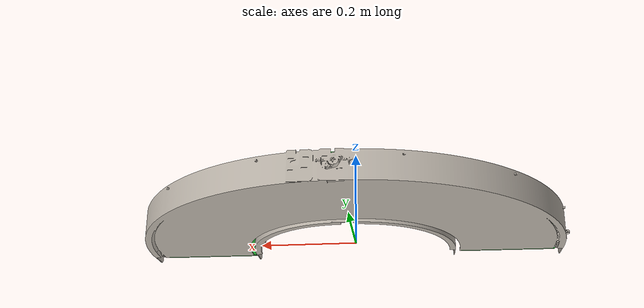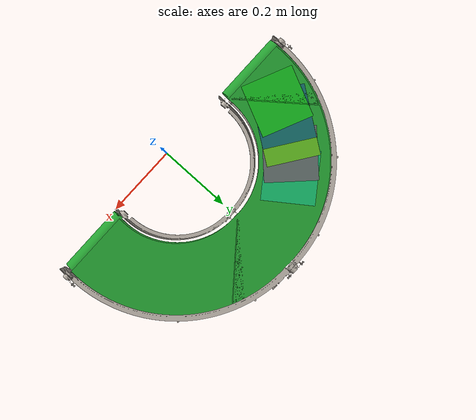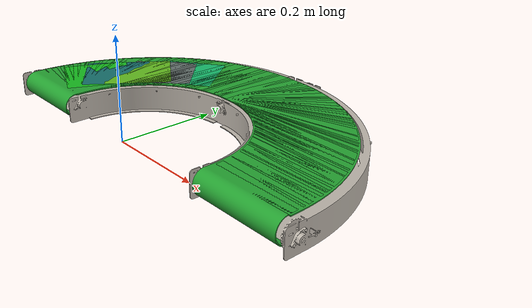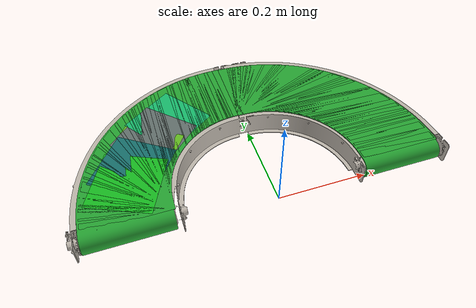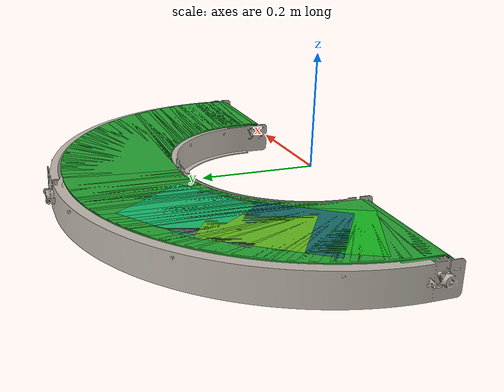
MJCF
<mujoco model="conveyor_curved">
    <size njmax="500" nconmax="100" />
    <asset>
      <texture name="tex_metal_rough" type="2d" file="../conveyor_belt/pvc_green.png" />
      <texture name="tex_metal_seamed" type="2d" file="Metal_Seamed.png" />

      <material name="mat_belt_metal_rough" texture="tex_metal_rough" reflectance="0.5" rgba="1 1 1 1"/>
      <material name="mat_fixtures_metal_seamed" texture="tex_metal_seamed" reflectance="0.7" rgba="1 1 1 1"/>
      <mesh name="mesh_belt_curved1" file="belt_curved1.obj" scale="0.3 0.3 0.3" />
      <mesh name="mesh_belt_curved2" file="belt_curved2.obj" scale="0.3 0.3 0.3" />
      <mesh name="mesh_fixtures_curved" file="fixtures_curved.obj" scale="0.3 0.3 0.3"/>

    </asset>

  <worldbody>
    <body>
      <body name="object">
        <!-- Curved belt body (adjust z-pos to half your scaled belt height: 0.171*0.6993/2 ≈ 0.0598) -->
        <body name="conveyor_curved" pos="0 0 0" quat="1 0 0 0">
          <inertial pos="0 0 0" mass="1000" diaginertia="1000 1000 1000" />

          <!-- Belt mesh excluding the curved ends  -->
          <geom name="contact_region" solimp="0.998 0.998 0.001" solref="0.001 1" density="100"
                type="mesh" mesh="mesh_belt_curved1" material="mat_belt_metal_rough"
                group="1" friction="0.8 0.1 0.001" contype="1" conaffinity="1" pos="0 0 0"/>

          <geom name="belt_curved" solimp="0.998 0.998 0.001" solref="0.001 1" density="100"
                type="mesh" mesh="mesh_belt_curved2" material="mat_belt_metal_rough"
                group="1" friction="0.001 0.005 0.001" contype="0" conaffinity="0" pos="0 0 0"/>
          <!-- Fixtures mesh with Metal_Seamed texture -->
          <geom name="fixtures_curved" solimp="0.998 0.998 0.001" solref="0.001 1" density="100"
                type="mesh" mesh="mesh_fixtures_curved" material="mat_fixtures_metal_seamed"
                group="1" friction="0.6 0.005 0.001" contype="0" conaffinity="0" pos="0 0 0"/>

          <!-- Optional: Keep your original contact regions/sites (adjust size/pos if needed) -->
          <site name="top_region_1" type="box" size="0.072 0.072 0.001" pos="-0.294 0.124 0.0226" quat="0.8403 0 0 0.5421" rgba="0 1 0 0.3" group='0'/>
          <site name="top_region_2" type="box" size="0.072 0.072 0.001" pos="-0.276 0.163 0.0226" quat="0.8861 0 0 0.4635" rgba="0 0 1 0.3" group='0'/>
          <site name="top_region_3" type="box" size="0.072 0.072 0.001" pos="-0.249 0.202 0.0226" quat="0.8861 0 0 0.4635" rgba="1 1 0 0.3" group='0'/>
          <site name="top_region_4" type="box" size="0.072 0.072 0.001" pos="-0.215 0.242 0.0226" quat="0.9239 0 0 0.3827" rgba="1 0 1 0.3" group='0'/>
          <site name="top_region_5" type="box" size="0.072 0.072 0.001" pos="-0.174 0.281 0.0226" quat="0.9511 0 0 0.3090" rgba="0 1 1 0.3" group='0'/>
        </body>
      </body>

      <!-- REQUIRED SITES (adjusted for scaled belt height) -->
      <site rgba="0 0 0 0" size="0.05" pos="0 0 -0.0296" name="bottom_site"/>
      <site rgba="0 0 0 0" size="0.05" pos="0 0 0.0235" name="top_site"/>
      <site rgba="0 0 0 0" size="0.05" pos="0.323 0 0.0235" name="horizontal_radius_site"/>
    </body>
  </worldbody>
</mujoco>
